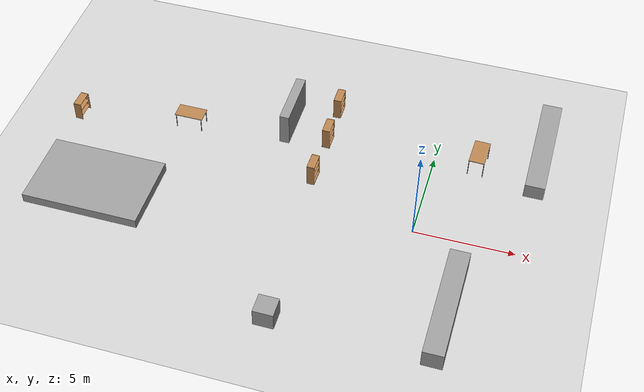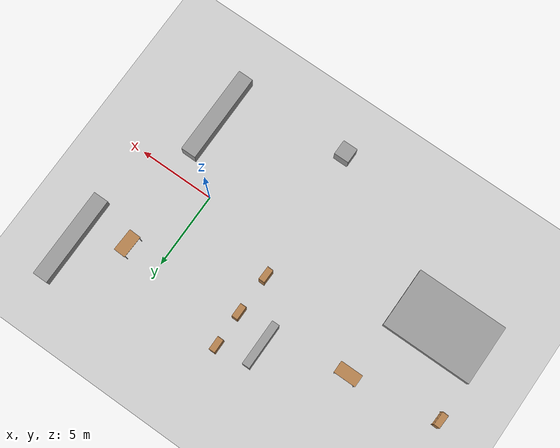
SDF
<sdf version="1.6">
 <world name="default">
  <model name="ground_plane">
   <static>1</static>
   <link name="link">
    <collision name="collision">
     <geometry><plane><normal>0 0 1</normal><size>100 100</size></plane></geometry>
     <surface>
      <contact><collide_bitmask>65535</collide_bitmask></contact>
      <friction><ode><mu>100</mu><mu2>50</mu2></ode></friction>
     </surface>
    </collision>
    <visual name="visual">
     <cast_shadows>0</cast_shadows>
     <geometry><plane><normal>0 0 1</normal><size>100 100</size></plane></geometry>
     <material>
      <script><uri>file://media/materials/scripts/gazebo.material</uri><name>Gazebo/Grey</name></script>
     </material>
    </visual>
   </link>
  </model>
  <model name="living_room">
   <link name="link_2">
    <pose>4.32874 -6.4237 0.299392 0 -0 0</pose>
    <inertial>
     <mass>1</mass>
     <inertia>
      <ixx>0.166667</ixx>
      <ixy>0</ixy>
      <ixz>0</ixz>
      <iyy>0.166667</iyy>
      <iyz>0</iyz>
      <izz>0.166667</izz>
     </inertia>
    </inertial>
    <visual name="visual">
     <geometry><box><size>1 6 1</size></box></geometry>
     <material>
      <lighting>1</lighting>
      <script><uri>file://media/materials/scripts/gazebo.material</uri><name>Gazebo/Grey</name></script>
      <shader type="pixel"><normal_map>__default__</normal_map></shader>
      <ambient>0.3 0.3 0.3 1</ambient>
      <diffuse>0.7 0.7 0.7 1</diffuse>
      <specular>0.01 0.01 0.01 1</specular>
      <emissive>0 0 0 1</emissive>
     </material>
    </visual>
    <collision name="collision">
     <geometry><box><size>1 6 1</size></box></geometry>
     <surface>
      <friction>
       <ode><mu>1</mu><mu2>1</mu2><fdir1>0 0 0</fdir1><slip1>0</slip1><slip2>0</slip2></ode>
       <torsional>
        <coefficient>1</coefficient>
        <patch_radius>0</patch_radius>
        <surface_radius>0</surface_radius>
        <use_patch_radius>1</use_patch_radius>
        <ode><slip>0</slip></ode>
       </torsional>
      </friction>
      <bounce><restitution_coefficient>0</restitution_coefficient><threshold>1e+06</threshold></bounce>
      <contact>
       <collide_without_contact>0</collide_without_contact>
       <collide_without_contact_bitmask>1</collide_without_contact_bitmask>
       <collide_bitmask>1</collide_bitmask>
       <ode>
        <soft_cfm>0</soft_cfm>
        <soft_erp>0.2</soft_erp>
        <kp>1e+13</kp>
        <kd>1</kd>
        <max_vel>0.01</max_vel>
        <min_depth>0</min_depth>
       </ode>
       <bullet>
        <split_impulse>1</split_impulse>
        <split_impulse_penetration_threshold>-0.01</split_impulse_penetration_threshold>
        <soft_cfm>0</soft_cfm>
        <soft_erp>0.2</soft_erp>
        <kp>1e+13</kp>
        <kd>1</kd>
       </bullet>
      </contact>
     </surface>
    </collision>
   </link>
   <link name="link_2_clone">
    <pose>7.02639 4.75582 0.203645 0 -0 0</pose>
    <inertial>
     <mass>1</mass>
     <inertia>
      <ixx>0.166667</ixx>
      <ixy>0</ixy>
      <ixz>0</ixz>
      <iyy>0.166667</iyy>
      <iyz>0</iyz>
      <izz>0.166667</izz>
     </inertia>
    </inertial>
    <visual name="visual">
     <geometry><box><size>1 6 0.8</size></box></geometry>
     <material>
      <lighting>1</lighting>
      <script><uri>file://media/materials/scripts/gazebo.material</uri><name>Gazebo/Grey</name></script>
      <shader type="pixel"><normal_map>__default__</normal_map></shader>
      <ambient>0.3 0.3 0.3 1</ambient>
      <diffuse>0.7 0.7 0.7 1</diffuse>
      <specular>0.01 0.01 0.01 1</specular>
      <emissive>0 0 0 1</emissive>
     </material>
    </visual>
    <collision name="collision">
     <geometry><box><size>1 6 0.8</size></box></geometry>
     <surface>
      <friction>
       <ode><mu>1</mu><mu2>1</mu2><fdir1>0 0 0</fdir1><slip1>0</slip1><slip2>0</slip2></ode>
       <torsional>
        <coefficient>1</coefficient>
        <patch_radius>0</patch_radius>
        <surface_radius>0</surface_radius>
        <use_patch_radius>1</use_patch_radius>
        <ode><slip>0</slip></ode>
       </torsional>
      </friction>
      <bounce><restitution_coefficient>0</restitution_coefficient><threshold>1e+06</threshold></bounce>
      <contact>
       <collide_without_contact>0</collide_without_contact>
       <collide_without_contact_bitmask>1</collide_without_contact_bitmask>
       <collide_bitmask>1</collide_bitmask>
       <ode>
        <soft_cfm>0</soft_cfm>
        <soft_erp>0.2</soft_erp>
        <kp>1e+13</kp>
        <kd>1</kd>
        <max_vel>0.01</max_vel>
        <min_depth>0</min_depth>
       </ode>
       <bullet>
        <split_impulse>1</split_impulse>
        <split_impulse_penetration_threshold>-0.01</split_impulse_penetration_threshold>
        <soft_cfm>0</soft_cfm>
        <soft_erp>0.2</soft_erp>
        <kp>1e+13</kp>
        <kd>1</kd>
       </bullet>
      </contact>
     </surface>
    </collision>
   </link>
   <link name="link_3">
    <pose>-3.39339 -8.98254 0.299392 0 -0 0</pose>
    <inertial>
     <mass>1</mass>
     <inertia>
      <ixx>0.166667</ixx>
      <ixy>0</ixy>
      <ixz>0</ixz>
      <iyy>0.166667</iyy>
      <iyz>0</iyz>
      <izz>0.166667</izz>
     </inertia>
    </inertial>
    <visual name="visual">
     <geometry><box><size>1 1 1</size></box></geometry>
     <material>
      <lighting>1</lighting>
      <script><uri>file://media/materials/scripts/gazebo.material</uri><name>Gazebo/Grey</name></script>
      <shader type="pixel"><normal_map>__default__</normal_map></shader>
      <ambient>0.3 0.3 0.3 1</ambient>
      <diffuse>0.7 0.7 0.7 1</diffuse>
      <specular>0.01 0.01 0.01 1</specular>
      <emissive>0 0 0 1</emissive>
     </material>
    </visual>
    <collision name="collision">
     <geometry><box><size>1 1 1</size></box></geometry>
     <surface>
      <friction>
       <ode><mu>1</mu><mu2>1</mu2><fdir1>0 0 0</fdir1><slip1>0</slip1><slip2>0</slip2></ode>
       <torsional>
        <coefficient>1</coefficient>
        <patch_radius>0</patch_radius>
        <surface_radius>0</surface_radius>
        <use_patch_radius>1</use_patch_radius>
        <ode><slip>0</slip></ode>
       </torsional>
      </friction>
      <bounce><restitution_coefficient>0</restitution_coefficient><threshold>1e+06</threshold></bounce>
      <contact>
       <collide_without_contact>0</collide_without_contact>
       <collide_without_contact_bitmask>1</collide_without_contact_bitmask>
       <collide_bitmask>1</collide_bitmask>
       <ode>
        <soft_cfm>0</soft_cfm>
        <soft_erp>0.2</soft_erp>
        <kp>1e+13</kp>
        <kd>1</kd>
        <max_vel>0.01</max_vel>
        <min_depth>0</min_depth>
       </ode>
       <bullet>
        <split_impulse>1</split_impulse>
        <split_impulse_penetration_threshold>-0.01</split_impulse_penetration_threshold>
        <soft_cfm>0</soft_cfm>
        <soft_erp>0.2</soft_erp>
        <kp>1e+13</kp>
        <kd>1</kd>
       </bullet>
      </contact>
     </surface>
    </collision>
   </link>
   <model name="bookshelf">
    <static>1</static>
    <link name="link">
     <inertial><mass>1</mass></inertial>
     <collision name="back">
      <pose>0 0.005 0.6 0 -0 0</pose>
      <geometry><box><size>0.9 0.01 1.2</size></box></geometry>
     </collision>
     <visual name="visual1">
      <pose>0 0.005 0.6 0 -0 0</pose>
      <geometry><box><size>0.9 0.01 1.2</size></box></geometry>
      <material>
       <script><uri>file://media/materials/scripts/gazebo.material</uri><name>Gazebo/Wood</name></script>
      </material>
     </visual>
     <collision name="left_side">
      <pose>0.45 -0.195 0.6 0 -0 0</pose>
      <geometry><box><size>0.02 0.4 1.2</size></box></geometry>
     </collision>
     <visual name="visual2">
      <pose>0.45 -0.195 0.6 0 -0 0</pose>
      <geometry><box><size>0.02 0.4 1.2</size></box></geometry>
      <material>
       <script><uri>file://media/materials/scripts/gazebo.material</uri><name>Gazebo/Wood</name></script>
      </material>
     </visual>
     <collision name="right_side">
      <pose>-0.45 -0.195 0.6 0 -0 0</pose>
      <geometry><box><size>0.02 0.4 1.2</size></box></geometry>
     </collision>
     <visual name="visual3">
      <pose>-0.45 -0.195 0.6 0 -0 0</pose>
      <geometry><box><size>0.02 0.4 1.2</size></box></geometry>
      <material>
       <script><uri>file://media/materials/scripts/gazebo.material</uri><name>Gazebo/Wood</name></script>
      </material>
     </visual>
     <collision name="bottom">
      <pose>0 -0.195 0.03 0 -0 0</pose>
      <geometry><box><size>0.88 0.4 0.06</size></box></geometry>
     </collision>
     <visual name="visual4">
      <pose>0 -0.195 0.03 0 -0 0</pose>
      <geometry><box><size>0.88 0.4 0.06</size></box></geometry>
      <material>
       <script><uri>file://media/materials/scripts/gazebo.material</uri><name>Gazebo/Wood</name></script>
      </material>
     </visual>
     <collision name="top">
      <pose>0 -0.195 1.19 0 -0 0</pose>
      <geometry><box><size>0.88 0.4 0.02</size></box></geometry>
     </collision>
     <visual name="visual5">
      <pose>0 -0.195 1.19 0 -0 0</pose>
      <geometry><box><size>0.88 0.4 0.02</size></box></geometry>
      <material>
       <script><uri>file://media/materials/scripts/gazebo.material</uri><name>Gazebo/Wood</name></script>
      </material>
     </visual>
     <collision name="low_shelf">
      <pose>0 -0.195 0.43 0 -0 0</pose>
      <geometry><box><size>0.88 0.4 0.02</size></box></geometry>
     </collision>
     <visual name="visual6">
      <pose>0 -0.195 0.43 0 -0 0</pose>
      <geometry><box><size>0.88 0.4 0.02</size></box></geometry>
      <material>
       <script><uri>file://media/materials/scripts/gazebo.material</uri><name>Gazebo/Wood</name></script>
      </material>
     </visual>
     <collision name="high_shelf">
      <pose>0 -0.195 0.8 0 -0 0</pose>
      <geometry><box><size>0.88 0.4 0.02</size></box></geometry>
     </collision>
     <visual name="visual7">
      <pose>0 -0.195 0.8 0 -0 0</pose>
      <geometry><box><size>0.88 0.4 0.02</size></box></geometry>
      <material>
       <script><uri>file://media/materials/scripts/gazebo.material</uri><name>Gazebo/Wood</name></script>
      </material>
     </visual>
    </link>
    <pose>-3.99427 -0.048755 -0.200608 0 -0 1.55172</pose>
   </model>
   <model name="bookshelf_0">
    <static>1</static>
    <link name="link">
     <inertial><mass>1</mass></inertial>
     <collision name="back">
      <pose>0 0.005 0.6 0 -0 0</pose>
      <geometry><box><size>0.9 0.01 1.2</size></box></geometry>
     </collision>
     <visual name="visual1">
      <pose>0 0.005 0.6 0 -0 0</pose>
      <geometry><box><size>0.9 0.01 1.2</size></box></geometry>
      <material>
       <script><uri>file://media/materials/scripts/gazebo.material</uri><name>Gazebo/Wood</name></script>
      </material>
     </visual>
     <collision name="left_side">
      <pose>0.45 -0.195 0.6 0 -0 0</pose>
      <geometry><box><size>0.02 0.4 1.2</size></box></geometry>
     </collision>
     <visual name="visual2">
      <pose>0.45 -0.195 0.6 0 -0 0</pose>
      <geometry><box><size>0.02 0.4 1.2</size></box></geometry>
      <material>
       <script><uri>file://media/materials/scripts/gazebo.material</uri><name>Gazebo/Wood</name></script>
      </material>
     </visual>
     <collision name="right_side">
      <pose>-0.45 -0.195 0.6 0 -0 0</pose>
      <geometry><box><size>0.02 0.4 1.2</size></box></geometry>
     </collision>
     <visual name="visual3">
      <pose>-0.45 -0.195 0.6 0 -0 0</pose>
      <geometry><box><size>0.02 0.4 1.2</size></box></geometry>
      <material>
       <script><uri>file://media/materials/scripts/gazebo.material</uri><name>Gazebo/Wood</name></script>
      </material>
     </visual>
     <collision name="bottom">
      <pose>0 -0.195 0.03 0 -0 0</pose>
      <geometry><box><size>0.88 0.4 0.06</size></box></geometry>
     </collision>
     <visual name="visual4">
      <pose>0 -0.195 0.03 0 -0 0</pose>
      <geometry><box><size>0.88 0.4 0.06</size></box></geometry>
      <material>
       <script><uri>file://media/materials/scripts/gazebo.material</uri><name>Gazebo/Wood</name></script>
      </material>
     </visual>
     <collision name="top">
      <pose>0 -0.195 1.19 0 -0 0</pose>
      <geometry><box><size>0.88 0.4 0.02</size></box></geometry>
     </collision>
     <visual name="visual5">
      <pose>0 -0.195 1.19 0 -0 0</pose>
      <geometry><box><size>0.88 0.4 0.02</size></box></geometry>
      <material>
       <script><uri>file://media/materials/scripts/gazebo.material</uri><name>Gazebo/Wood</name></script>
      </material>
     </visual>
     <collision name="low_shelf">
      <pose>0 -0.195 0.43 0 -0 0</pose>
      <geometry><box><size>0.88 0.4 0.02</size></box></geometry>
     </collision>
     <visual name="visual6">
      <pose>0 -0.195 0.43 0 -0 0</pose>
      <geometry><box><size>0.88 0.4 0.02</size></box></geometry>
      <material>
       <script><uri>file://media/materials/scripts/gazebo.material</uri><name>Gazebo/Wood</name></script>
      </material>
     </visual>
     <collision name="high_shelf">
      <pose>0 -0.195 0.8 0 -0 0</pose>
      <geometry><box><size>0.88 0.4 0.02</size></box></geometry>
     </collision>
     <visual name="visual7">
      <pose>0 -0.195 0.8 0 -0 0</pose>
      <geometry><box><size>0.88 0.4 0.02</size></box></geometry>
      <material>
       <script><uri>file://media/materials/scripts/gazebo.material</uri><name>Gazebo/Wood</name></script>
      </material>
     </visual>
    </link>
    <pose>-3.965 2.62617 -0.200608 0 -0 1.57154</pose>
   </model>
   <model name="bookshelf_1">
    <static>1</static>
    <link name="link">
     <inertial><mass>1</mass></inertial>
     <collision name="back">
      <pose>0 0.005 0.6 0 -0 0</pose>
      <geometry><box><size>0.9 0.01 1.2</size></box></geometry>
     </collision>
     <visual name="visual1">
      <pose>0 0.005 0.6 0 -0 0</pose>
      <geometry><box><size>0.9 0.01 1.2</size></box></geometry>
      <material>
       <script><uri>file://media/materials/scripts/gazebo.material</uri><name>Gazebo/Wood</name></script>
      </material>
     </visual>
     <collision name="left_side">
      <pose>0.45 -0.195 0.6 0 -0 0</pose>
      <geometry><box><size>0.02 0.4 1.2</size></box></geometry>
     </collision>
     <visual name="visual2">
      <pose>0.45 -0.195 0.6 0 -0 0</pose>
      <geometry><box><size>0.02 0.4 1.2</size></box></geometry>
      <material>
       <script><uri>file://media/materials/scripts/gazebo.material</uri><name>Gazebo/Wood</name></script>
      </material>
     </visual>
     <collision name="right_side">
      <pose>-0.45 -0.195 0.6 0 -0 0</pose>
      <geometry><box><size>0.02 0.4 1.2</size></box></geometry>
     </collision>
     <visual name="visual3">
      <pose>-0.45 -0.195 0.6 0 -0 0</pose>
      <geometry><box><size>0.02 0.4 1.2</size></box></geometry>
      <material>
       <script><uri>file://media/materials/scripts/gazebo.material</uri><name>Gazebo/Wood</name></script>
      </material>
     </visual>
     <collision name="bottom">
      <pose>0 -0.195 0.03 0 -0 0</pose>
      <geometry><box><size>0.88 0.4 0.06</size></box></geometry>
     </collision>
     <visual name="visual4">
      <pose>0 -0.195 0.03 0 -0 0</pose>
      <geometry><box><size>0.88 0.4 0.06</size></box></geometry>
      <material>
       <script><uri>file://media/materials/scripts/gazebo.material</uri><name>Gazebo/Wood</name></script>
      </material>
     </visual>
     <collision name="top">
      <pose>0 -0.195 1.19 0 -0 0</pose>
      <geometry><box><size>0.88 0.4 0.02</size></box></geometry>
     </collision>
     <visual name="visual5">
      <pose>0 -0.195 1.19 0 -0 0</pose>
      <geometry><box><size>0.88 0.4 0.02</size></box></geometry>
      <material>
       <script><uri>file://media/materials/scripts/gazebo.material</uri><name>Gazebo/Wood</name></script>
      </material>
     </visual>
     <collision name="low_shelf">
      <pose>0 -0.195 0.43 0 -0 0</pose>
      <geometry><box><size>0.88 0.4 0.02</size></box></geometry>
     </collision>
     <visual name="visual6">
      <pose>0 -0.195 0.43 0 -0 0</pose>
      <geometry><box><size>0.88 0.4 0.02</size></box></geometry>
      <material>
       <script><uri>file://media/materials/scripts/gazebo.material</uri><name>Gazebo/Wood</name></script>
      </material>
     </visual>
     <collision name="high_shelf">
      <pose>0 -0.195 0.8 0 -0 0</pose>
      <geometry><box><size>0.88 0.4 0.02</size></box></geometry>
     </collision>
     <visual name="visual7">
      <pose>0 -0.195 0.8 0 -0 0</pose>
      <geometry><box><size>0.88 0.4 0.02</size></box></geometry>
      <material>
       <script><uri>file://media/materials/scripts/gazebo.material</uri><name>Gazebo/Wood</name></script>
      </material>
     </visual>
    </link>
    <pose>-4.00092 4.9431 -0.200608 0 -0 1.57578</pose>
   </model>
   <model name="table">
    <static>1</static>
    <link name="link">
     <collision name="surface">
      <pose>0 0 1 0 -0 0</pose>
      <geometry><box><size>1.5 0.8 0.03</size></box></geometry>
      <surface><friction><ode><mu>0.6</mu><mu2>0.6</mu2></ode></friction></surface>
     </collision>
     <visual name="visual1">
      <pose>0 0 1 0 -0 0</pose>
      <geometry><box><size>1.5 0.8 0.03</size></box></geometry>
      <material>
       <script><uri>file://media/materials/scripts/gazebo.material</uri><name>Gazebo/Wood</name></script>
      </material>
     </visual>
     <collision name="front_left_leg">
      <pose>0.68 0.38 0.5 0 -0 0</pose>
      <geometry><cylinder><radius>0.02</radius><length>1</length></cylinder></geometry>
     </collision>
     <visual name="front_left_leg">
      <pose>0.68 0.38 0.5 0 -0 0</pose>
      <geometry><cylinder><radius>0.02</radius><length>1</length></cylinder></geometry>
      <material>
       <script><uri>file://media/materials/scripts/gazebo.material</uri><name>Gazebo/Grey</name></script>
      </material>
     </visual>
     <collision name="front_right_leg">
      <pose>0.68 -0.38 0.5 0 -0 0</pose>
      <geometry><cylinder><radius>0.02</radius><length>1</length></cylinder></geometry>
     </collision>
     <visual name="front_right_leg">
      <pose>0.68 -0.38 0.5 0 -0 0</pose>
      <geometry><cylinder><radius>0.02</radius><length>1</length></cylinder></geometry>
      <material>
       <script><uri>file://media/materials/scripts/gazebo.material</uri><name>Gazebo/Grey</name></script>
      </material>
     </visual>
     <collision name="back_right_leg">
      <pose>-0.68 -0.38 0.5 0 -0 0</pose>
      <geometry><cylinder><radius>0.02</radius><length>1</length></cylinder></geometry>
     </collision>
     <visual name="back_right_leg">
      <pose>-0.68 -0.38 0.5 0 -0 0</pose>
      <geometry><cylinder><radius>0.02</radius><length>1</length></cylinder></geometry>
      <material>
       <script><uri>file://media/materials/scripts/gazebo.material</uri><name>Gazebo/Grey</name></script>
      </material>
     </visual>
     <collision name="back_left_leg">
      <pose>-0.68 0.38 0.5 0 -0 0</pose>
      <geometry><cylinder><radius>0.02</radius><length>1</length></cylinder></geometry>
     </collision>
     <visual name="back_left_leg">
      <pose>-0.68 0.38 0.5 0 -0 0</pose>
      <geometry><cylinder><radius>0.02</radius><length>1</length></cylinder></geometry>
      <material>
       <script><uri>file://media/materials/scripts/gazebo.material</uri><name>Gazebo/Grey</name></script>
      </material>
     </visual>
    </link>
    <pose>3.99843 3.12991 -0.200608 0 0 -1.60666</pose>
   </model>
   <static>0</static>
   <pose>-1.80951 2.08114 0.206114 0.001608 -0 0.000108</pose>
  </model>
  <model name="bedroom2">
   <link name="link_0">
    <pose>-20.1561 -5.31706 0.5 0 -0 0</pose>
    <inertial>
     <mass>1</mass>
     <inertia>
      <ixx>0.166667</ixx>
      <ixy>0</ixy>
      <ixz>0</ixz>
      <iyy>0.166667</iyy>
      <iyz>0</iyz>
      <izz>0.166667</izz>
     </inertia>
    </inertial>
    <visual name="visual">
     <geometry><box><size>6 4 0.5</size></box></geometry>
     <material>
      <lighting>1</lighting>
      <script><uri>file://media/materials/scripts/gazebo.material</uri><name>Gazebo/Grey</name></script>
      <shader type="pixel"><normal_map>__default__</normal_map></shader>
      <ambient>0.3 0.3 0.3 1</ambient>
      <diffuse>0.7 0.7 0.7 1</diffuse>
      <specular>0.01 0.01 0.01 1</specular>
      <emissive>0 0 0 1</emissive>
     </material>
    </visual>
    <collision name="collision">
     <geometry><box><size>6 4 0.5</size></box></geometry>
     <surface>
      <friction>
       <ode><mu>1</mu><mu2>1</mu2><fdir1>0 0 0</fdir1><slip1>0</slip1><slip2>0</slip2></ode>
       <torsional>
        <coefficient>1</coefficient>
        <patch_radius>0</patch_radius>
        <surface_radius>0</surface_radius>
        <use_patch_radius>1</use_patch_radius>
        <ode><slip>0</slip></ode>
       </torsional>
      </friction>
      <bounce><restitution_coefficient>0</restitution_coefficient><threshold>1e+06</threshold></bounce>
      <contact>
       <collide_without_contact>0</collide_without_contact>
       <collide_without_contact_bitmask>1</collide_without_contact_bitmask>
       <collide_bitmask>1</collide_bitmask>
       <ode>
        <soft_cfm>0</soft_cfm>
        <soft_erp>0.2</soft_erp>
        <kp>1e+13</kp>
        <kd>1</kd>
        <max_vel>0.01</max_vel>
        <min_depth>0</min_depth>
       </ode>
       <bullet>
        <split_impulse>1</split_impulse>
        <split_impulse_penetration_threshold>-0.01</split_impulse_penetration_threshold>
        <soft_cfm>0</soft_cfm>
        <soft_erp>0.2</soft_erp>
        <kp>1e+13</kp>
        <kd>1</kd>
       </bullet>
      </contact>
     </surface>
    </collision>
   </link>
   <link name="link_1">
    <pose>-12.0096 1.84857 1.02355 0 -0 0</pose>
    <inertial>
     <mass>1</mass>
     <inertia>
      <ixx>0.166667</ixx>
      <ixy>0</ixy>
      <ixz>0</ixz>
      <iyy>0.166667</iyy>
      <iyz>0</iyz>
      <izz>0.166667</izz>
     </inertia>
    </inertial>
    <visual name="visual">
     <geometry><box><size>0.5 3 2</size></box></geometry>
     <material>
      <lighting>1</lighting>
      <script><uri>file://media/materials/scripts/gazebo.material</uri><name>Gazebo/Grey</name></script>
      <shader type="pixel"><normal_map>__default__</normal_map></shader>
      <ambient>0.3 0.3 0.3 1</ambient>
      <diffuse>0.7 0.7 0.7 1</diffuse>
      <specular>0.01 0.01 0.01 1</specular>
      <emissive>0 0 0 1</emissive>
     </material>
    </visual>
    <collision name="collision">
     <geometry><box><size>0.5 3 2</size></box></geometry>
     <surface>
      <friction>
       <ode><mu>1</mu><mu2>1</mu2><fdir1>0 0 0</fdir1><slip1>0</slip1><slip2>0</slip2></ode>
       <torsional>
        <coefficient>1</coefficient>
        <patch_radius>0</patch_radius>
        <surface_radius>0</surface_radius>
        <use_patch_radius>1</use_patch_radius>
        <ode><slip>0</slip></ode>
       </torsional>
      </friction>
      <bounce><restitution_coefficient>0</restitution_coefficient><threshold>1e+06</threshold></bounce>
      <contact>
       <collide_without_contact>0</collide_without_contact>
       <collide_without_contact_bitmask>1</collide_without_contact_bitmask>
       <collide_bitmask>1</collide_bitmask>
       <ode>
        <soft_cfm>0</soft_cfm>
        <soft_erp>0.2</soft_erp>
        <kp>1e+13</kp>
        <kd>1</kd>
        <max_vel>0.01</max_vel>
        <min_depth>0</min_depth>
       </ode>
       <bullet>
        <split_impulse>1</split_impulse>
        <split_impulse_penetration_threshold>-0.01</split_impulse_penetration_threshold>
        <soft_cfm>0</soft_cfm>
        <soft_erp>0.2</soft_erp>
        <kp>1e+13</kp>
        <kd>1</kd>
       </bullet>
      </contact>
     </surface>
    </collision>
   </link>
   <model name="bookshelf">
    <static>1</static>
    <link name="link">
     <inertial><mass>1</mass></inertial>
     <collision name="back">
      <pose>0 0.005 0.6 0 -0 0</pose>
      <geometry><box><size>0.9 0.01 1.2</size></box></geometry>
     </collision>
     <visual name="visual1">
      <pose>0 0.005 0.6 0 -0 0</pose>
      <geometry><box><size>0.9 0.01 1.2</size></box></geometry>
      <material>
       <script><uri>file://media/materials/scripts/gazebo.material</uri><name>Gazebo/Wood</name></script>
      </material>
     </visual>
     <collision name="left_side">
      <pose>0.45 -0.195 0.6 0 -0 0</pose>
      <geometry><box><size>0.02 0.4 1.2</size></box></geometry>
     </collision>
     <visual name="visual2">
      <pose>0.45 -0.195 0.6 0 -0 0</pose>
      <geometry><box><size>0.02 0.4 1.2</size></box></geometry>
      <material>
       <script><uri>file://media/materials/scripts/gazebo.material</uri><name>Gazebo/Wood</name></script>
      </material>
     </visual>
     <collision name="right_side">
      <pose>-0.45 -0.195 0.6 0 -0 0</pose>
      <geometry><box><size>0.02 0.4 1.2</size></box></geometry>
     </collision>
     <visual name="visual3">
      <pose>-0.45 -0.195 0.6 0 -0 0</pose>
      <geometry><box><size>0.02 0.4 1.2</size></box></geometry>
      <material>
       <script><uri>file://media/materials/scripts/gazebo.material</uri><name>Gazebo/Wood</name></script>
      </material>
     </visual>
     <collision name="bottom">
      <pose>0 -0.195 0.03 0 -0 0</pose>
      <geometry><box><size>0.88 0.4 0.06</size></box></geometry>
     </collision>
     <visual name="visual4">
      <pose>0 -0.195 0.03 0 -0 0</pose>
      <geometry><box><size>0.88 0.4 0.06</size></box></geometry>
      <material>
       <script><uri>file://media/materials/scripts/gazebo.material</uri><name>Gazebo/Wood</name></script>
      </material>
     </visual>
     <collision name="top">
      <pose>0 -0.195 1.19 0 -0 0</pose>
      <geometry><box><size>0.88 0.4 0.02</size></box></geometry>
     </collision>
     <visual name="visual5">
      <pose>0 -0.195 1.19 0 -0 0</pose>
      <geometry><box><size>0.88 0.4 0.02</size></box></geometry>
      <material>
       <script><uri>file://media/materials/scripts/gazebo.material</uri><name>Gazebo/Wood</name></script>
      </material>
     </visual>
     <collision name="low_shelf">
      <pose>0 -0.195 0.43 0 -0 0</pose>
      <geometry><box><size>0.88 0.4 0.02</size></box></geometry>
     </collision>
     <visual name="visual6">
      <pose>0 -0.195 0.43 0 -0 0</pose>
      <geometry><box><size>0.88 0.4 0.02</size></box></geometry>
      <material>
       <script><uri>file://media/materials/scripts/gazebo.material</uri><name>Gazebo/Wood</name></script>
      </material>
     </visual>
     <collision name="high_shelf">
      <pose>0 -0.195 0.8 0 -0 0</pose>
      <geometry><box><size>0.88 0.4 0.02</size></box></geometry>
     </collision>
     <visual name="visual7">
      <pose>0 -0.195 0.8 0 -0 0</pose>
      <geometry><box><size>0.88 0.4 0.02</size></box></geometry>
      <material>
       <script><uri>file://media/materials/scripts/gazebo.material</uri><name>Gazebo/Wood</name></script>
      </material>
     </visual>
    </link>
    <pose>-23.1094 -0.616393 0.032133 0 -0 1.53303</pose>
   </model>
   <model name="table">
    <static>1</static>
    <link name="link">
     <collision name="surface">
      <pose>0 0 1 0 -0 0</pose>
      <geometry><box><size>1.5 0.8 0.03</size></box></geometry>
      <surface><friction><ode><mu>0.6</mu><mu2>0.6</mu2></ode></friction></surface>
     </collision>
     <visual name="visual1">
      <pose>0 0 1 0 -0 0</pose>
      <geometry><box><size>1.5 0.8 0.03</size></box></geometry>
      <material>
       <script><uri>file://media/materials/scripts/gazebo.material</uri><name>Gazebo/Wood</name></script>
      </material>
     </visual>
     <collision name="front_left_leg">
      <pose>0.68 0.38 0.5 0 -0 0</pose>
      <geometry><cylinder><radius>0.02</radius><length>1</length></cylinder></geometry>
     </collision>
     <visual name="front_left_leg">
      <pose>0.68 0.38 0.5 0 -0 0</pose>
      <geometry><cylinder><radius>0.02</radius><length>1</length></cylinder></geometry>
      <material>
       <script><uri>file://media/materials/scripts/gazebo.material</uri><name>Gazebo/Grey</name></script>
      </material>
     </visual>
     <collision name="front_right_leg">
      <pose>0.68 -0.38 0.5 0 -0 0</pose>
      <geometry><cylinder><radius>0.02</radius><length>1</length></cylinder></geometry>
     </collision>
     <visual name="front_right_leg">
      <pose>0.68 -0.38 0.5 0 -0 0</pose>
      <geometry><cylinder><radius>0.02</radius><length>1</length></cylinder></geometry>
      <material>
       <script><uri>file://media/materials/scripts/gazebo.material</uri><name>Gazebo/Grey</name></script>
      </material>
     </visual>
     <collision name="back_right_leg">
      <pose>-0.68 -0.38 0.5 0 -0 0</pose>
      <geometry><cylinder><radius>0.02</radius><length>1</length></cylinder></geometry>
     </collision>
     <visual name="back_right_leg">
      <pose>-0.68 -0.38 0.5 0 -0 0</pose>
      <geometry><cylinder><radius>0.02</radius><length>1</length></cylinder></geometry>
      <material>
       <script><uri>file://media/materials/scripts/gazebo.material</uri><name>Gazebo/Grey</name></script>
      </material>
     </visual>
     <collision name="back_left_leg">
      <pose>-0.68 0.38 0.5 0 -0 0</pose>
      <geometry><cylinder><radius>0.02</radius><length>1</length></cylinder></geometry>
     </collision>
     <visual name="back_left_leg">
      <pose>-0.68 0.38 0.5 0 -0 0</pose>
      <geometry><cylinder><radius>0.02</radius><length>1</length></cylinder></geometry>
      <material>
       <script><uri>file://media/materials/scripts/gazebo.material</uri><name>Gazebo/Grey</name></script>
      </material>
     </visual>
    </link>
    <pose>-17.0903 0.269182 0.042772 0 -0 0</pose>
   </model>
   <static>0</static>
   <pose>4.2573 3.70969 -0.295141 0 0.00195 0</pose>
  </model>
 </world>
</sdf>
